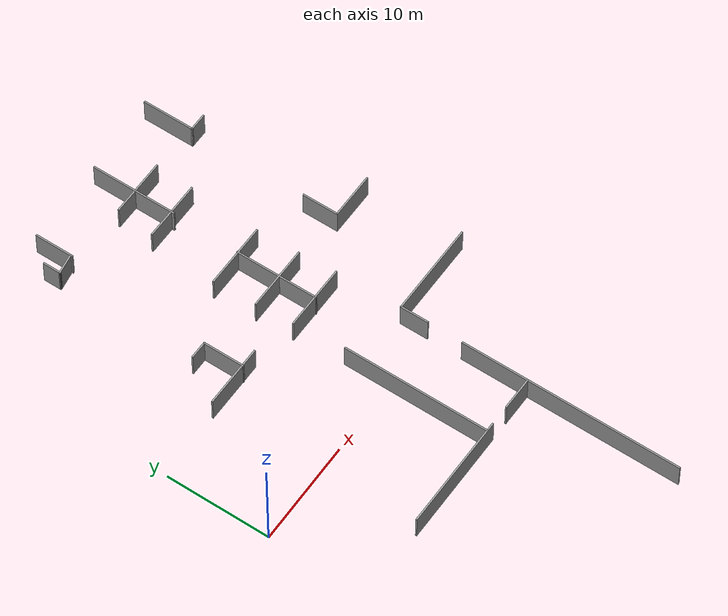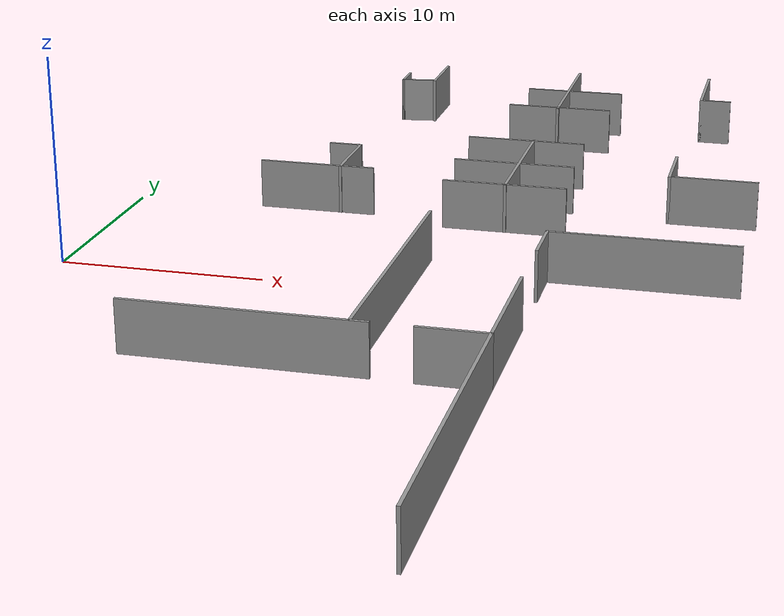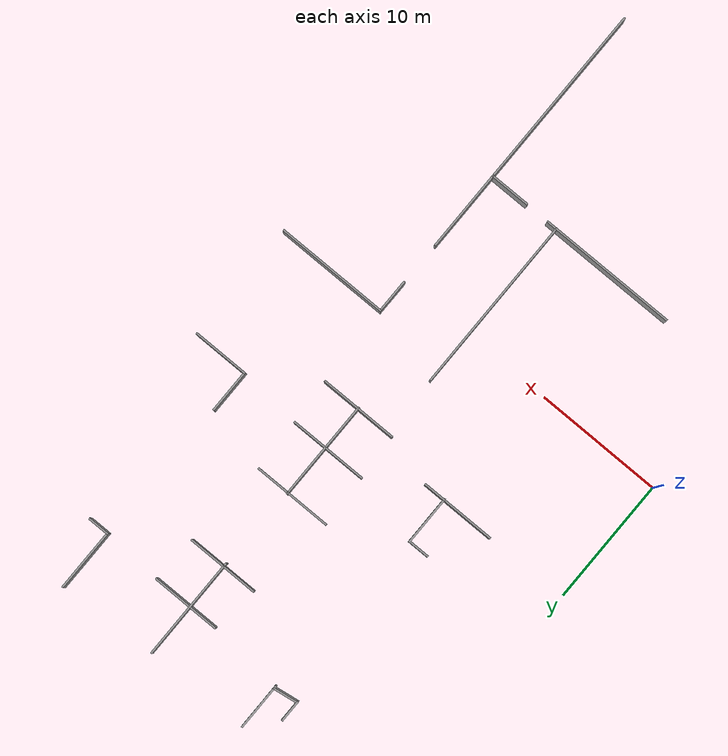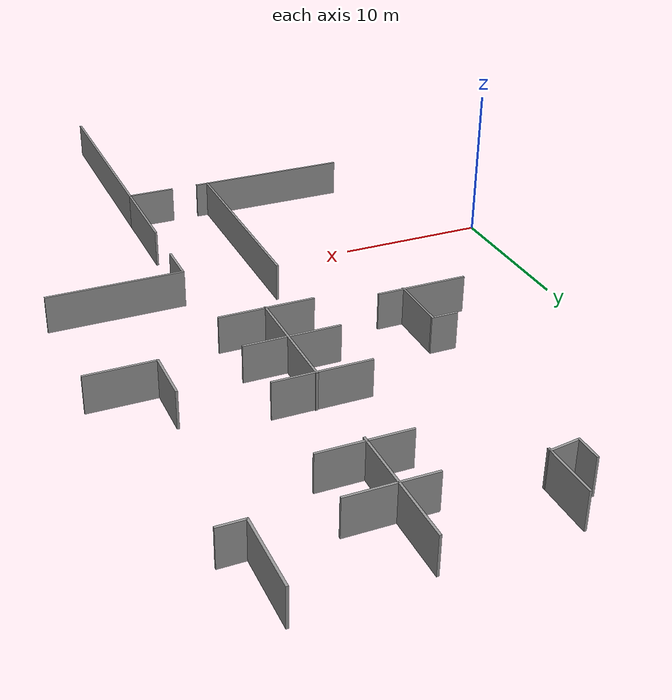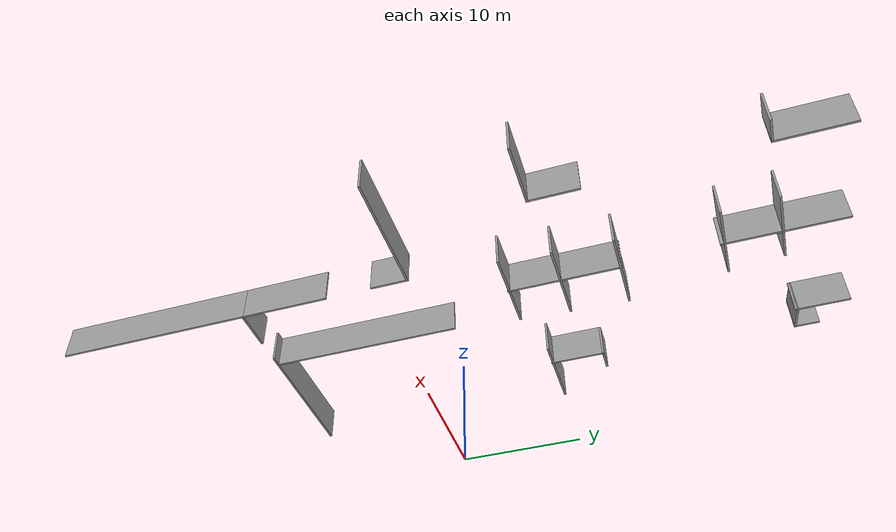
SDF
<?xml version='1.0'?>
<sdf version='1.6'>
  <model name='office_2'>
    <pose frame=''>19.223 3.91729 0 0 -0 0</pose>
    <link name='Wall_11'>
      <collision name='Wall_11_Collision'>
        <geometry>
          <box>
            <size>6.5 0.15 2.5</size>
          </box>
        </geometry>
        <pose frame=''>0 0 1.25 0 -0 0</pose>
      </collision>
      <visual name='Wall_11_Visual'>
        <pose frame=''>0 0 1.25 0 -0 0</pose>
        <geometry>
          <box>
            <size>6.5 0.15 2.5</size>
          </box>
        </geometry>
        <material>
          <script>
            <uri>file://media/materials/scripts/gazebo.material</uri>
            <name>Gazebo/Grey</name>
          </script>
          <ambient>1 1 1 1</ambient>
        </material>
        <meta>
          <layer>0</layer>
        </meta>
      </visual>
      <pose frame=''>3.61683 -10.3722 0 0 -0 1.5708</pose>
    </link>
    <link name='Wall_13'>
      <collision name='Wall_13_Collision'>
        <geometry>
          <box>
            <size>2.75 0.15 2.5</size>
          </box>
        </geometry>
        <pose frame=''>0 0 1.25 0 -0 0</pose>
      </collision>
      <visual name='Wall_13_Visual'>
        <pose frame=''>0 0 1.25 0 -0 0</pose>
        <geometry>
          <box>
            <size>2.75 0.15 2.5</size>
          </box>
        </geometry>
        <material>
          <script>
            <uri>file://media/materials/scripts/gazebo.material</uri>
            <name>Gazebo/Grey</name>
          </script>
          <ambient>1 1 1 1</ambient>
        </material>
        <meta>
          <layer>0</layer>
        </meta>
      </visual>
      <pose frame=''>3.64403 -2.41016 0 0 -0 1.5708</pose>
    </link>
    <link name='Wall_14'>
      <collision name='Wall_14_Collision'>
        <geometry>
          <box>
            <size>9 0.15 2.5</size>
          </box>
        </geometry>
        <pose frame=''>0 0 1.25 0 -0 0</pose>
      </collision>
      <visual name='Wall_14_Visual'>
        <pose frame=''>0 0 1.25 0 -0 0</pose>
        <geometry>
          <box>
            <size>9 0.15 2.5</size>
          </box>
        </geometry>
        <material>
          <script>
            <uri>file://media/materials/scripts/gazebo.material</uri>
            <name>Gazebo/Grey</name>
          </script>
          <ambient>1 1 1 1</ambient>
        </material>
        <meta>
          <layer>0</layer>
        </meta>
      </visual>
      <pose frame=''>8.06904 -1.11016 0 0 -0 0</pose>
    </link>
    <link name='Wall_20'>
      <collision name='Wall_20_Collision'>
        <geometry>
          <box>
            <size>14 0.15 2.5</size>
          </box>
        </geometry>
        <pose frame=''>0 0 1.25 0 -0 0</pose>
      </collision>
      <visual name='Wall_20_Visual'>
        <pose frame=''>0 0 1.25 0 -0 0</pose>
        <geometry>
          <box>
            <size>14 0.15 2.5</size>
          </box>
        </geometry>
        <material>
          <script>
            <uri>file://media/materials/scripts/gazebo.material</uri>
            <name>Gazebo/Grey</name>
          </script>
          <ambient>1 1 1 1</ambient>
        </material>
        <meta>
          <layer>0</layer>
        </meta>
      </visual>
      <pose frame=''>-2.23045 -6.54514 0 0 -0 1.5708</pose>
    </link>
    <link name='Wall_29'>
      <collision name='Wall_29_Collision'>
        <geometry>
          <box>
            <size>6 0.15 2.5</size>
          </box>
        </geometry>
        <pose frame=''>0 0 1.25 0 -0 0</pose>
      </collision>
      <visual name='Wall_29_Visual'>
        <pose frame=''>0 0 1.25 0 -0 0</pose>
        <geometry>
          <box>
            <size>6 0.15 2.5</size>
          </box>
        </geometry>
        <material>
          <script>
            <uri>file://media/materials/scripts/gazebo.material</uri>
            <name>Gazebo/Grey</name>
          </script>
          <ambient>1 1 1 1</ambient>
        </material>
        <meta>
          <layer>0</layer>
        </meta>
      </visual>
      <pose frame=''>-9.61448 6.29314 0 0 -0 0</pose>
    </link>
    <link name='Wall_3'>
      <collision name='Wall_3_Collision'>
        <geometry>
          <box>
            <size>11 0.15 2.5</size>
          </box>
        </geometry>
        <pose frame=''>0 0 1.25 0 -0 0</pose>
      </collision>
      <visual name='Wall_3_Visual'>
        <pose frame=''>0 0 1.25 0 -0 0</pose>
        <geometry>
          <box>
            <size>11 0.15 2.5</size>
          </box>
        </geometry>
        <material>
          <script>
            <uri>file://media/materials/scripts/gazebo.material</uri>
            <name>Gazebo/Grey</name>
          </script>
          <ambient>1 1 1 1</ambient>
        </material>
        <meta>
          <layer>0</layer>
        </meta>
      </visual>
      <pose frame=''>-6.89347 -13.5267 0 0 -0 0</pose>
    </link>
    <link name='Wall_32'>
      <collision name='Wall_32_Collision'>
        <geometry>
          <box>
            <size>4 0.15 2.5</size>
          </box>
        </geometry>
        <pose frame=''>0 0 1.25 0 -0 0</pose>
      </collision>
      <visual name='Wall_32_Visual'>
        <pose frame=''>0 0 1.25 0 -0 0</pose>
        <geometry>
          <box>
            <size>4 0.15 2.5</size>
          </box>
        </geometry>
        <material>
          <script>
            <uri>file://media/materials/scripts/gazebo.material</uri>
            <name>Gazebo/Grey</name>
          </script>
          <ambient>1 1 1 1</ambient>
        </material>
        <meta>
          <layer>0</layer>
        </meta>
      </visual>
      <pose frame=''>-8.37317 8.17348 0 0 -0 1.5708</pose>
    </link>
    <link name='Wall_33'>
      <collision name='Wall_33_Collision'>
        <geometry>
          <box>
            <size>1.75 0.15 2.5</size>
          </box>
        </geometry>
        <pose frame=''>0 0 1.25 0 -0 0</pose>
      </collision>
      <visual name='Wall_33_Visual'>
        <pose frame=''>0 0 1.25 0 -0 0</pose>
        <geometry>
          <box>
            <size>1.75 0.15 2.5</size>
          </box>
        </geometry>
        <material>
          <script>
            <uri>file://media/materials/scripts/gazebo.material</uri>
            <name>Gazebo/Grey</name>
          </script>
          <ambient>1 1 1 1</ambient>
        </material>
        <meta>
          <layer>0</layer>
        </meta>
      </visual>
      <pose frame=''>-9.17316 10.0985 0 0 -0 3.14159</pose>
    </link>
    <link name='Wall_47'>
      <collision name='Wall_47_Collision'>
        <geometry>
          <box>
            <size>3.75 0.15 2.5</size>
          </box>
        </geometry>
        <pose frame=''>0 0 1.25 0 -0 0</pose>
      </collision>
      <visual name='Wall_47_Visual'>
        <pose frame=''>0 0 1.25 0 -0 0</pose>
        <geometry>
          <box>
            <size>3.75 0.15 2.5</size>
          </box>
        </geometry>
        <material>
          <script>
            <uri>file://media/materials/scripts/gazebo.material</uri>
            <name>Gazebo/Grey</name>
          </script>
          <ambient>1 1 1 1</ambient>
        </material>
        <meta>
          <layer>0</layer>
        </meta>
      </visual>
      <pose frame=''>-7.63999 25.7901 0 0 -0 -1.5708</pose>
    </link>
    <link name='Wall_48'>
      <collision name='Wall_48_Collision'>
        <geometry>
          <box>
            <size>2.05601 0.15 2.5</size>
          </box>
        </geometry>
        <pose frame=''>0 0 1.25 0 -0 0</pose>
      </collision>
      <visual name='Wall_48_Visual'>
        <pose frame=''>0 0 1.25 0 -0 0</pose>
        <geometry>
          <box>
            <size>2.05601 0.15 2.5</size>
          </box>
        </geometry>
        <material>
          <script>
            <uri>file://media/materials/scripts/gazebo.material</uri>
            <name>Gazebo/Grey</name>
          </script>
          <ambient>1 1 1 1</ambient>
        </material>
        <meta>
          <layer>0</layer>
        </meta>
      </visual>
      <pose frame=''>-8.5823 23.9901 0 0 -0 -2.9917</pose>
    </link>
    <link name='Wall_49'>
      <collision name='Wall_49_Collision'>
        <geometry>
          <box>
            <size>1.75 0.15 2.5</size>
          </box>
        </geometry>
        <pose frame=''>0 0 1.25 0 -0 0</pose>
      </collision>
      <visual name='Wall_49_Visual'>
        <pose frame=''>0 0 1.25 0 -0 0</pose>
        <geometry>
          <box>
            <size>1.75 0.15 2.5</size>
          </box>
        </geometry>
        <material>
          <script>
            <uri>file://media/materials/scripts/gazebo.material</uri>
            <name>Gazebo/Grey</name>
          </script>
          <ambient>1 1 1 1</ambient>
        </material>
        <meta>
          <layer>0</layer>
        </meta>
      </visual>
      <pose frame=''>-9.52462 24.6478 0 0 -0 1.5708</pose>
    </link>
    <link name='Wall_57'>
      <collision name='Wall_57_Collision'>
        <geometry>
          <box>
            <size>5 0.15 2.5</size>
          </box>
        </geometry>
        <pose frame=''>0 0 1.25 0 -0 0</pose>
      </collision>
      <visual name='Wall_57_Visual'>
        <pose frame=''>0 0 1.25 0 -0 0</pose>
        <geometry>
          <box>
            <size>5 0.15 2.5</size>
          </box>
        </geometry>
        <material>
          <script>
            <uri>file://media/materials/scripts/gazebo.material</uri>
            <name>Gazebo/Grey</name>
          </script>
          <ambient>1 1 1 1</ambient>
        </material>
        <meta>
          <layer>0</layer>
        </meta>
      </visual>
      <pose frame=''>8.35473 25.7222 0 0 -0 -1.5708</pose>
    </link>
    <link name='Wall_58'>
      <collision name='Wall_58_Collision'>
        <geometry>
          <box>
            <size>1.75 0.15 2.5</size>
          </box>
        </geometry>
        <pose frame=''>0 0 1.25 0 -0 0</pose>
      </collision>
      <visual name='Wall_58_Visual'>
        <pose frame=''>0 0 1.25 0 -0 0</pose>
        <geometry>
          <box>
            <size>1.75 0.15 2.5</size>
          </box>
        </geometry>
        <material>
          <script>
            <uri>file://media/materials/scripts/gazebo.material</uri>
            <name>Gazebo/Grey</name>
          </script>
          <ambient>1 1 1 1</ambient>
        </material>
        <meta>
          <layer>0</layer>
        </meta>
      </visual>
      <pose frame=''>9.15472 23.2972 0 0 -0 0</pose>
    </link>
    <link name='Wall_60'>
      <collision name='Wall_60_Collision'>
        <geometry>
          <box>
            <size>8.25 0.15 2.5</size>
          </box>
        </geometry>
        <pose frame=''>0 0 1.25 0 -0 0</pose>
      </collision>
      <visual name='Wall_60_Visual'>
        <pose frame=''>0 0 1.25 0 -0 0</pose>
        <geometry>
          <box>
            <size>8.25 0.15 2.5</size>
          </box>
        </geometry>
        <material>
          <script>
            <uri>file://media/materials/scripts/gazebo.material</uri>
            <name>Gazebo/Grey</name>
          </script>
          <ambient>1 1 1 1</ambient>
        </material>
        <meta>
          <layer>0</layer>
        </meta>
      </visual>
      <pose frame=''>0.578927 23.6502 0 0 -0 -1.5708</pose>
    </link>
    <link name='Wall_65'>
      <collision name='Wall_65_Collision'>
        <geometry>
          <box>
            <size>5.75 0.15 2.5</size>
          </box>
        </geometry>
        <pose frame=''>0 0 1.25 0 -0 0</pose>
      </collision>
      <visual name='Wall_65_Visual'>
        <pose frame=''>0 0 1.25 0 -0 0</pose>
        <geometry>
          <box>
            <size>5.75 0.15 2.5</size>
          </box>
        </geometry>
        <material>
          <script>
            <uri>file://media/materials/scripts/gazebo.material</uri>
            <name>Gazebo/Grey</name>
          </script>
          <ambient>1 1 1 1</ambient>
        </material>
        <meta>
          <layer>0</layer>
        </meta>
      </visual>
      <pose frame=''>0.659823 19.8318 0 0 -0 0</pose>
    </link>
    <link name='Wall_69'>
      <collision name='Wall_69_Collision'>
        <geometry>
          <box>
            <size>5.5 0.15 2.5</size>
          </box>
        </geometry>
        <pose frame=''>0 0 1.25 0 -0 0</pose>
      </collision>
      <visual name='Wall_69_Visual'>
        <pose frame=''>0 0 1.25 0 -0 0</pose>
        <geometry>
          <box>
            <size>5.5 0.15 2.5</size>
          </box>
        </geometry>
        <material>
          <script>
            <uri>file://media/materials/scripts/gazebo.material</uri>
            <name>Gazebo/Grey</name>
          </script>
          <ambient>1 1 1 1</ambient>
        </material>
        <meta>
          <layer>0</layer>
        </meta>
      </visual>
      <pose frame=''>0.961778 23.5321 0 0 -0 0</pose>
    </link>
    <link name='Wall_71'>
      <collision name='Wall_71_Collision'>
        <geometry>
          <box>
            <size>8 0.15 2.5</size>
          </box>
        </geometry>
        <pose frame=''>0 0 1.25 0 -0 0</pose>
      </collision>
      <visual name='Wall_71_Visual'>
        <pose frame=''>0 0 1.25 0 -0 0</pose>
        <geometry>
          <box>
            <size>8 0.15 2.5</size>
          </box>
        </geometry>
        <material>
          <script>
            <uri>file://media/materials/scripts/gazebo.material</uri>
            <name>Gazebo/Grey</name>
          </script>
          <ambient>1 1 1 1</ambient>
        </material>
        <meta>
          <layer>0</layer>
        </meta>
      </visual>
      <pose frame=''>0.422198 9.09895 0 0 -0 -1.5708</pose>
    </link>
    <link name='Wall_73'>
      <collision name='Wall_73_Collision'>
        <geometry>
          <box>
            <size>6.25 0.15 2.5</size>
          </box>
        </geometry>
        <pose frame=''>0 0 1.25 0 -0 0</pose>
      </collision>
      <visual name='Wall_73_Visual'>
        <pose frame=''>0 0 1.25 0 -0 0</pose>
        <geometry>
          <box>
            <size>6.25 0.15 2.5</size>
          </box>
        </geometry>
        <material>
          <script>
            <uri>file://media/materials/scripts/gazebo.material</uri>
            <name>Gazebo/Grey</name>
          </script>
          <ambient>1 1 1 1</ambient>
        </material>
        <meta>
          <layer>0</layer>
        </meta>
      </visual>
      <pose frame=''>0.373353 5.22741 0 0 -0 0</pose>
    </link>
    <link name='Wall_8'>
      <collision name='Wall_8_Collision'>
        <geometry>
          <box>
            <size>3.25 0.15 2.5</size>
          </box>
        </geometry>
        <pose frame=''>0 0 1.25 0 -0 0</pose>
      </collision>
      <visual name='Wall_8_Visual'>
        <pose frame=''>0 0 1.25 0 -0 0</pose>
        <geometry>
          <box>
            <size>3.25 0.15 2.5</size>
          </box>
        </geometry>
        <material>
          <script>
            <uri>file://media/materials/scripts/gazebo.material</uri>
            <name>Gazebo/Grey</name>
          </script>
          <ambient>1 1 1 1</ambient>
        </material>
        <meta>
          <layer>0</layer>
        </meta>
      </visual>
      <pose frame=''>2.06683 -13.5472 0 0 -0 0</pose>
    </link>
    <link name='Wall_82'>
      <collision name='Wall_82_Collision'>
        <geometry>
          <box>
            <size>6.25 0.15 2.5</size>
          </box>
        </geometry>
        <pose frame=''>0 0 1.25 0 -0 0</pose>
      </collision>
      <visual name='Wall_82_Visual'>
        <pose frame=''>0 0 1.25 0 -0 0</pose>
        <geometry>
          <box>
            <size>6.25 0.15 2.5</size>
          </box>
        </geometry>
        <material>
          <script>
            <uri>file://media/materials/scripts/gazebo.material</uri>
            <name>Gazebo/Grey</name>
          </script>
          <ambient>1 1 1 1</ambient>
        </material>
        <meta>
          <layer>0</layer>
        </meta>
      </visual>
      <pose frame=''>0.163686 8.82451 0 0 -0 0</pose>
    </link>
    <link name='Wall_84'>
      <collision name='Wall_84_Collision'>
        <geometry>
          <box>
            <size>6.25 0.15 2.5</size>
          </box>
        </geometry>
        <pose frame=''>0 0 1.25 0 -0 0</pose>
      </collision>
      <visual name='Wall_84_Visual'>
        <pose frame=''>0 0 1.25 0 -0 0</pose>
        <geometry>
          <box>
            <size>6.25 0.15 2.5</size>
          </box>
        </geometry>
        <material>
          <script>
            <uri>file://media/materials/scripts/gazebo.material</uri>
            <name>Gazebo/Grey</name>
          </script>
          <ambient>1 1 1 1</ambient>
        </material>
        <meta>
          <layer>0</layer>
        </meta>
      </visual>
      <pose frame=''>0.015128 12.9567 0 0 -0 0</pose>
    </link>
    <link name='Wall_89'>
      <collision name='Wall_89_Collision'>
        <geometry>
          <box>
            <size>4.5 0.15 2.5</size>
          </box>
        </geometry>
        <pose frame=''>0 0 1.25 0 -0 0</pose>
      </collision>
      <visual name='Wall_89_Visual'>
        <pose frame=''>0 0 1.25 0 -0 0</pose>
        <geometry>
          <box>
            <size>4.5 0.15 2.5</size>
          </box>
        </geometry>
        <material>
          <script>
            <uri>file://media/materials/scripts/gazebo.material</uri>
            <name>Gazebo/Grey</name>
          </script>
          <ambient>1 1 1 1</ambient>
        </material>
        <meta>
          <layer>0</layer>
        </meta>
      </visual>
      <pose frame=''>10.3645 8.4266 0 0 -0 0</pose>
    </link>
    <link name='Wall_9'>
      <collision name='Wall_9_Collision'>
        <geometry>
          <box>
            <size>14.75 0.15 2.5</size>
          </box>
        </geometry>
        <pose frame=''>0 0 1.25 0 -0 0</pose>
      </collision>
      <visual name='Wall_9_Visual'>
        <pose frame=''>0 0 1.25 0 -0 0</pose>
        <geometry>
          <box>
            <size>14.75 0.15 2.5</size>
          </box>
        </geometry>
        <material>
          <script>
            <uri>file://media/materials/scripts/gazebo.material</uri>
            <name>Gazebo/Grey</name>
          </script>
          <ambient>1 1 1 1</ambient>
        </material>
        <meta>
          <layer>0</layer>
        </meta>
      </visual>
      <pose frame=''>3.61683 -20.8472 0 0 -0 -1.5708</pose>
    </link>
    <link name='Wall_91'>
      <collision name='Wall_91_Collision'>
        <geometry>
          <box>
            <size>3.5 0.15 2.5</size>
          </box>
        </geometry>
        <pose frame=''>0 0 1.25 0 -0 0</pose>
      </collision>
      <visual name='Wall_91_Visual'>
        <pose frame=''>0 0 1.25 0 -0 0</pose>
        <geometry>
          <box>
            <size>3.5 0.15 2.5</size>
          </box>
        </geometry>
        <material>
          <script>
            <uri>file://media/materials/scripts/gazebo.material</uri>
            <name>Gazebo/Grey</name>
          </script>
          <ambient>1 1 1 1</ambient>
        </material>
        <meta>
          <layer>0</layer>
        </meta>
      </visual>
      <pose frame=''>8.18948 10.1016 0 0 -0 1.5708</pose>
    </link>
    <static>1</static>
  </model>
</sdf>
